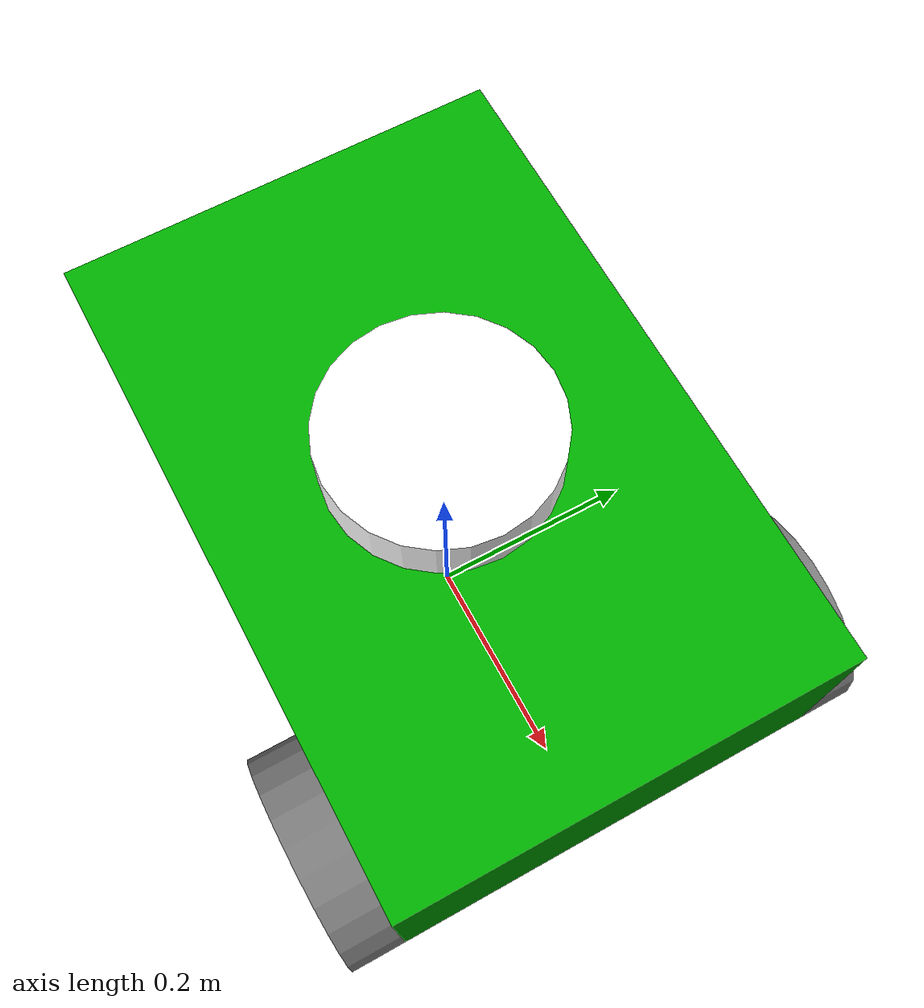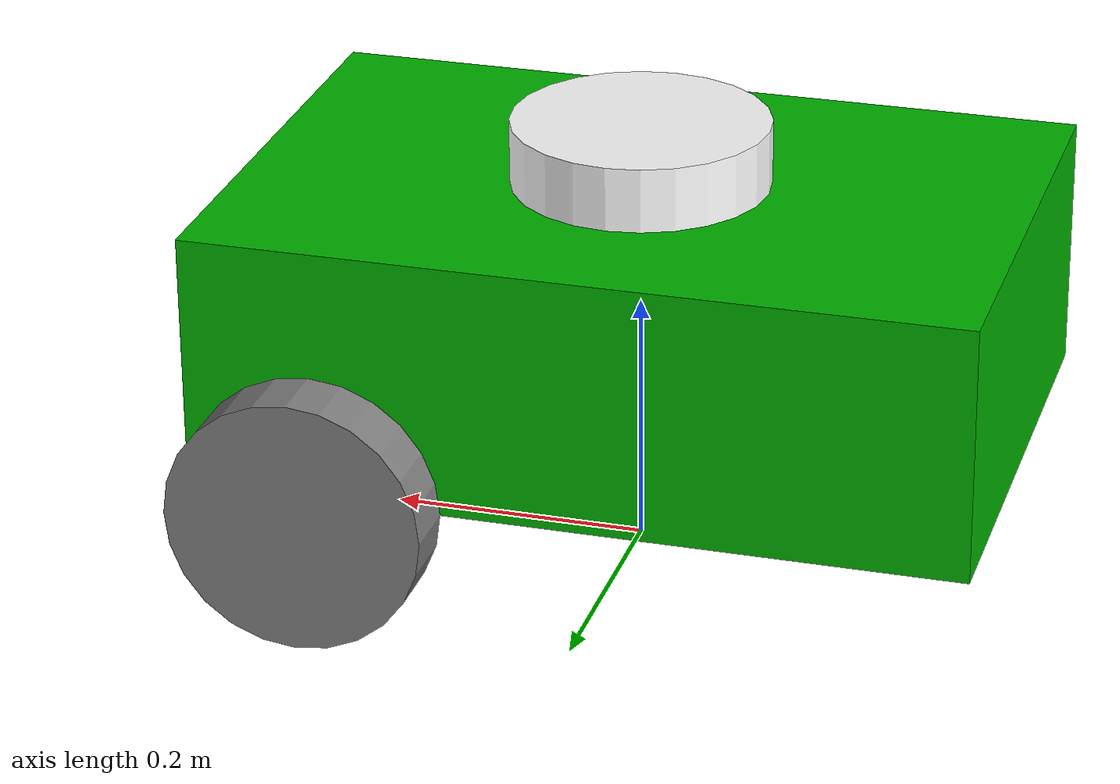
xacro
<?xml version="1.0"?>
<!-- Basic differential drive mobile base -->
<robot xmlns:xacro="http://www.ros.org/wiki/xacro" name="kiki_robot">
  <xacro:arg name="prefix" default="" />

  <xacro:include filename="$(find kiki_bot)/description/kiki.urdf.xacro" />

  <!-- Import Rviz colors -->

  <!-- Import diffbot ros2_control description -->
  <xacro:include filename="$(find kiki_bot)/plugin/kikibot.ros2_control.xacro" />

  <xacro:diffbot prefix="$(arg prefix)" />

  <xacro:diffbot_ros2_control
    name="KikiBot" prefix="$(arg prefix)" />

</robot>

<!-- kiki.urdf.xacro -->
<robot xmlns:xacro="http://www.ros.org/wiki/xacro">

  <xacro:macro name="diffbot" params="prefix">

  <material name="grey">
    <color rgba="0.5 0.5 0.5 1.0"/>
  </material>

  <material name="white">
    <color rgba="1 1 1 1.0"/>
  </material>

  <material name="green">
    <color rgba="0 0.7 0.0 1.0"/>
  </material>

  <link name="base_footprint">

  </link>

  <link name="base_link">
    <visual>
        <geometry>
          <box size="0.6 0.4 0.2"/>
        </geometry>
        <origin xyz="0.0 0.0 0.1" rpy="0.0 0.0 0.0"/>
        <material name="green"/>
    </visual>
  </link>

  <link name="lidar_link">
    <visual>
      <origin xyz="0.0 0.0 0" rpy="0.0 0.0 0.0"/>
      <geometry>
        <cylinder radius="0.1" length="0.05"/>
      </geometry>
      <material name="white"/>
    </visual>
  </link>

  <link name="right_wheel_link">
    <visual>
      <origin xyz="0.0 0.0 0.0" rpy="0.0 0.0 0.0"/>
      <geometry>
        <cylinder radius="0.1" length="0.05"/>
      </geometry>
      <material name="grey"/>
    </visual>
  </link>

  <link name="left_wheel_link">
    <visual>
      <origin xyz="0.0 0.0 0.0" rpy="0.0 0.0 0.0"/>
      <geometry>
        <cylinder radius="0.1" length="0.05"/>
      </geometry>
      <material name="grey"/>
    </visual>
  </link>

  <link name="castor_link">
    <visual name="">
      <origin xyz="0.0 0.0 0.0" rpy="0.0 0.0 0.0"/>
      <geometry>
        <sphere radius="0.05"/>
      </geometry>
      <material name="grey"/>
    </visual>
  </link>

  <joint name="base_joint" type="fixed">
    <origin xyz="0.0 0.0 0.1" rpy="0.0 0.0 0.0"/>
    <parent link="base_footprint"/>
    <child link="base_link"/>
  </joint>

  <joint name="base_lidar_joint" type="fixed">
    <origin xyz="0.0 0.0 0.225" rpy="0.0 0.0 0.0"/>
    <parent link="base_link"/>
    <child link="lidar_link"/>
    <axis xyz="0.0 0.0 0.0"/>
  </joint>

  <joint name="right_wheel_joint" type="continuous">
    <origin xyz="0.2 0.225 0.0" rpy="1.5708 0.0 0.0"/>
    <parent link="base_link"/>
    <child link="right_wheel_link"/>
    <axis xyz="0 0 1"/>
  </joint>

  <joint name="left_wheel_joint" type="continuous">
    <origin xyz="0.2 -0.225 0.0" rpy="1.5708 0.0 0.0"/>
    <parent link="base_link"/>
    <child link="left_wheel_link"/>
    <axis xyz="0 0 1"/>
  </joint>

  <joint name="castor_joint" type="fixed">
    <origin xyz="-0.15 0.0 -0.025" rpy="0.0 0.0 0.0"/>
    <parent link="base_link"/>
    <child link="castor_link"/>
    <axis xyz="0.0 0.0 0.0"/>
  </joint>

  </xacro:macro>

</robot>
